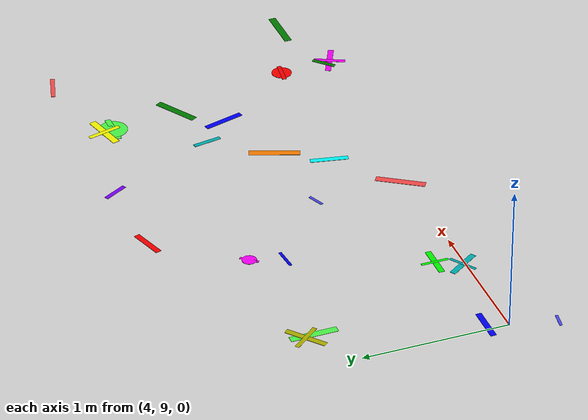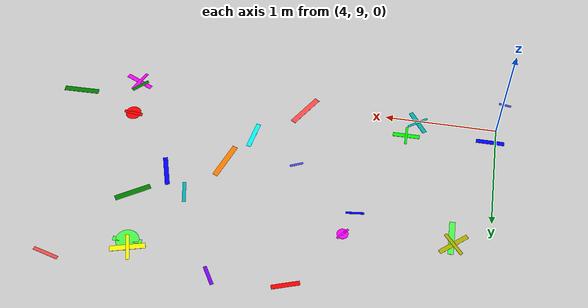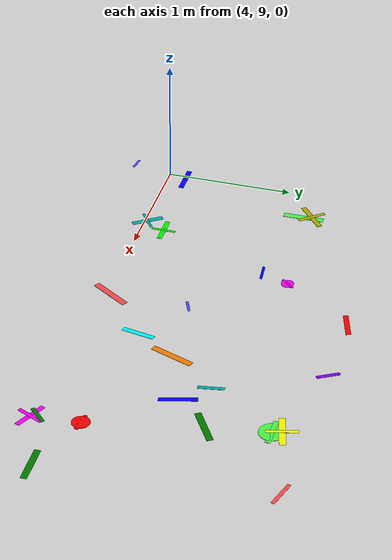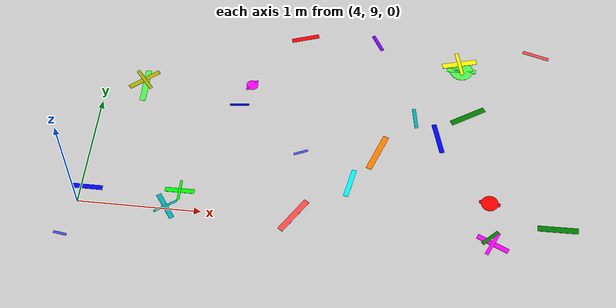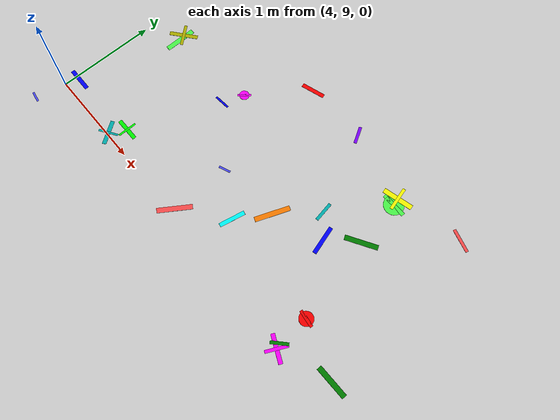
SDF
<sdf version="1.6">
 <world name="default">
  <model name="letter_X_1443">
   <static>true</static>
   <pose>3.93 8.69 0.004 0 0 2.988</pose>
   <link name="link">
    <visual name="visual">
     <geometry><box><size>0.11 0.02 0.002</size></box></geometry>
     <material>
      <ambient>0.3 0.3 1.0 1</ambient>
      <diffuse>0.3 0.3 1.0 1</diffuse>
      <specular>0.1 0.1 0.1 1</specular>
     </material>
    </visual>
   </link>
  </model>
  <model name="letter_U_1444">
   <static>true</static>
   <pose>4.05 9.14 0.004 0 0 3.137</pose>
   <link name="link">
    <visual name="visual">
     <geometry><box><size>0.25 0.04 0.002</size></box></geometry>
     <material>
      <ambient>0.0 0.0 1.0 1</ambient>
      <diffuse>0.0 0.0 1.0 1</diffuse>
      <specular>0.1 0.1 0.1 1</specular>
     </material>
    </visual>
   </link>
  </model>
  <model name="letter_L_1446">
   <static>true</static>
   <pose>4.31 10.26 0.013 0 0 3.841</pose>
   <link name="link">
    <visual name="visual">
     <geometry><box><size>0.29 0.04 0.002</size></box></geometry>
     <material>
      <ambient>0.7 0.7 0.0 1</ambient>
      <diffuse>0.7 0.7 0.0 1</diffuse>
      <specular>0.1 0.1 0.1 1</specular>
     </material>
    </visual>
    <visual name="visual2">
     <pose>0 0 0.001 0 0 1.57</pose>
     <geometry><box><size>0.23 0.03 0.001</size></box></geometry>
     <material><ambient>0.7 0.7 0.0 1</ambient><diffuse>0.7 0.7 0.0 1</diffuse></material>
    </visual>
   </link>
  </model>
  <model name="letter_Z_1447">
   <static>true</static>
   <pose>4.33 10.20 0.010 0 0 1.580</pose>
   <link name="link">
    <visual name="visual">
     <geometry><box><size>0.32 0.05 0.002</size></box></geometry>
     <material>
      <ambient>0.3 1.0 0.3 1</ambient>
      <diffuse>0.3 1.0 0.3 1</diffuse>
      <specular>0.1 0.1 0.1 1</specular>
     </material>
    </visual>
   </link>
  </model>
  <model name="letter_I_1518">
   <static>true</static>
   <pose>4.71 9.02 0.007 0 0 2.176</pose>
   <link name="link">
    <visual name="visual">
     <geometry><box><size>0.25 0.04 0.002</size></box></geometry>
     <material>
      <ambient>0.0 0.7 0.7 1</ambient>
      <diffuse>0.0 0.7 0.7 1</diffuse>
      <specular>0.1 0.1 0.1 1</specular>
     </material>
    </visual>
    <visual name="visual2">
     <pose>0 0 0.001 0 0 1.57</pose>
     <geometry><box><size>0.20 0.02 0.001</size></box></geometry>
     <material><ambient>0.0 0.7 0.7 1</ambient><diffuse>0.0 0.7 0.7 1</diffuse></material>
    </visual>
   </link>
  </model>
  <model name="letter_A_1519">
   <static>true</static>
   <pose>4.80 9.18 0.004 0 0 0.002</pose>
   <link name="link">
    <visual name="visual">
     <geometry><box><size>0.24 0.04 0.002</size></box></geometry>
     <material>
      <ambient>0.0 1.0 0.0 1</ambient>
      <diffuse>0.0 1.0 0.0 1</diffuse>
      <specular>0.1 0.1 0.1 1</specular>
     </material>
    </visual>
    <visual name="visual2">
     <pose>0 0 0.001 0 0 1.57</pose>
     <geometry><box><size>0.19 0.02 0.001</size></box></geometry>
     <material><ambient>0.0 1.0 0.0 1</ambient><diffuse>0.0 1.0 0.0 1</diffuse></material>
    </visual>
   </link>
  </model>
  <model name="letter_J_1520">
   <static>true</static>
   <pose>5.16 10.08 0.012 0 0 3.244</pose>
   <link name="link">
    <visual name="visual">
     <geometry><box><size>0.16 0.02 0.002</size></box></geometry>
     <material>
      <ambient>0.0 0.0 1.0 1</ambient>
      <diffuse>0.0 0.0 1.0 1</diffuse>
      <specular>0.1 0.1 0.1 1</specular>
     </material>
    </visual>
   </link>
  </model>
  <model name="letter_C_1521">
   <static>true</static>
   <pose>5.24 10.30 0.007 0 0 4.015</pose>
   <link name="link">
    <visual name="visual">
     <geometry><box><size>0.13 0.02 0.002</size></box></geometry>
     <material>
      <ambient>1.0 0.0 1.0 1</ambient>
      <diffuse>1.0 0.0 1.0 1</diffuse>
      <specular>0.1 0.1 0.1 1</specular>
     </material>
    </visual>
    <visual name="visual2">
     <geometry><cylinder><radius>0.05</radius><length>0.002</length></cylinder></geometry>
     <material><ambient>1.0 0.0 1.0 1</ambient><diffuse>1.0 0.0 1.0 1</diffuse></material>
    </visual>
   </link>
  </model>
  <model name="letter_S_1594">
   <static>true</static>
   <pose>5.74 9.04 0.005 0 0 0.998</pose>
   <link name="link">
    <visual name="visual">
     <geometry><box><size>0.34 0.05 0.002</size></box></geometry>
     <material>
      <ambient>1.0 0.3 0.3 1</ambient>
      <diffuse>1.0 0.3 0.3 1</diffuse>
      <specular>0.1 0.1 0.1 1</specular>
     </material>
    </visual>
   </link>
  </model>
  <model name="letter_P_1595">
   <static>true</static>
   <pose>6.16 9.39 0.005 0 0 1.378</pose>
   <link name="link">
    <visual name="visual">
     <geometry><box><size>0.26 0.04 0.002</size></box></geometry>
     <material>
      <ambient>0.0 1.0 1.0 1</ambient>
      <diffuse>0.0 1.0 1.0 1</diffuse>
      <specular>0.1 0.1 0.1 1</specular>
     </material>
    </visual>
   </link>
  </model>
  <model name="letter_D_1596">
   <static>true</static>
   <pose>5.73 9.65 0.004 0 0 3.549</pose>
   <link name="link">
    <visual name="visual">
     <geometry><box><size>0.12 0.02 0.002</size></box></geometry>
     <material>
      <ambient>0.3 0.3 1.0 1</ambient>
      <diffuse>0.3 0.3 1.0 1</diffuse>
      <specular>0.1 0.1 0.1 1</specular>
     </material>
    </visual>
   </link>
  </model>
  <model name="letter_D_1597">
   <static>true</static>
   <pose>6.36 9.71 0.006 0 0 4.356</pose>
   <link name="link">
    <visual name="visual">
     <geometry><box><size>0.35 0.05 0.002</size></box></geometry>
     <material>
      <ambient>1.0 0.5 0.0 1</ambient>
      <diffuse>1.0 0.5 0.0 1</diffuse>
      <specular>0.1 0.1 0.1 1</specular>
     </material>
    </visual>
   </link>
  </model>
  <model name="letter_P_1598">
   <static>true</static>
   <pose>5.64 10.86 0.012 0 0 0.319</pose>
   <link name="link">
    <visual name="visual">
     <geometry><box><size>0.24 0.04 0.002</size></box></geometry>
     <material>
      <ambient>1.0 0.0 0.0 1</ambient>
      <diffuse>1.0 0.0 0.0 1</diffuse>
      <specular>0.1 0.1 0.1 1</specular>
     </material>
    </visual>
   </link>
  </model>
  <model name="letter_X_1600">
   <static>true</static>
   <pose>6.28 10.87 0.012 0 0 5.237</pose>
   <link name="link">
    <visual name="visual">
     <geometry><box><size>0.18 0.03 0.002</size></box></geometry>
     <material>
      <ambient>0.5 0.0 1.0 1</ambient>
      <diffuse>0.5 0.0 1.0 1</diffuse>
      <specular>0.1 0.1 0.1 1</specular>
     </material>
    </visual>
   </link>
  </model>
  <model name="letter_J_1669">
   <static>true</static>
   <pose>7.30 8.99 0.012 0 0 3.909</pose>
   <link name="link">
    <visual name="visual">
     <geometry><box><size>0.17 0.03 0.002</size></box></geometry>
     <material>
      <ambient>0.0 0.5 0.0 1</ambient>
      <diffuse>0.0 0.5 0.0 1</diffuse>
      <specular>0.1 0.1 0.1 1</specular>
     </material>
    </visual>
   </link>
  </model>
  <model name="letter_F_1670">
   <static>true</static>
   <pose>7.32 8.94 0.010 0 0 2.700</pose>
   <link name="link">
    <visual name="visual">
     <geometry><box><size>0.27 0.04 0.002</size></box></geometry>
     <material>
      <ambient>1.0 0.0 1.0 1</ambient>
      <diffuse>1.0 0.0 1.0 1</diffuse>
      <specular>0.1 0.1 0.1 1</specular>
     </material>
    </visual>
    <visual name="visual2">
     <pose>0 0 0.001 0 0 1.57</pose>
     <geometry><box><size>0.22 0.03 0.001</size></box></geometry>
     <material><ambient>1.0 0.0 1.0 1</ambient><diffuse>1.0 0.0 1.0 1</diffuse></material>
    </visual>
   </link>
  </model>
  <model name="letter_Q_1671">
   <static>true</static>
   <pose>7.29 9.31 0.008 0 0 6.160</pose>
   <link name="link">
    <visual name="visual">
     <geometry><box><size>0.17 0.03 0.002</size></box></geometry>
     <material>
      <ambient>1.0 0.0 0.0 1</ambient>
      <diffuse>1.0 0.0 0.0 1</diffuse>
      <specular>0.1 0.1 0.1 1</specular>
     </material>
    </visual>
    <visual name="visual2">
     <geometry><cylinder><radius>0.07</radius><length>0.002</length></cylinder></geometry>
     <material><ambient>1.0 0.0 0.0 1</ambient><diffuse>1.0 0.0 0.0 1</diffuse></material>
    </visual>
   </link>
  </model>
  <model name="letter_V_1672">
   <static>true</static>
   <pose>6.85 9.90 0.010 0 0 1.849</pose>
   <link name="link">
    <visual name="visual">
     <geometry><box><size>0.29 0.04 0.002</size></box></geometry>
     <material>
      <ambient>0.0 0.0 1.0 1</ambient>
      <diffuse>0.0 0.0 1.0 1</diffuse>
      <specular>0.1 0.1 0.1 1</specular>
     </material>
    </visual>
   </link>
  </model>
  <model name="letter_M_1673">
   <static>true</static>
   <pose>7.09 10.16 0.003 0 0 3.697</pose>
   <link name="link">
    <visual name="visual">
     <geometry><box><size>0.32 0.05 0.002</size></box></geometry>
     <material>
      <ambient>0.0 0.5 0.0 1</ambient>
      <diffuse>0.0 0.5 0.0 1</diffuse>
      <specular>0.1 0.1 0.1 1</specular>
     </material>
    </visual>
   </link>
  </model>
  <model name="letter_X_1674">
   <static>true</static>
   <pose>6.65 10.09 0.006 0 0 1.743</pose>
   <link name="link">
    <visual name="visual">
     <geometry><box><size>0.20 0.03 0.002</size></box></geometry>
     <material>
      <ambient>0.0 0.7 0.7 1</ambient>
      <diffuse>0.0 0.7 0.7 1</diffuse>
      <specular>0.1 0.1 0.1 1</specular>
     </material>
    </visual>
   </link>
  </model>
  <model name="letter_H_1675">
   <static>true</static>
   <pose>7.00 10.71 0.012 0 0 0.258</pose>
   <link name="link">
    <visual name="visual">
     <geometry><box><size>0.30 0.05 0.002</size></box></geometry>
     <material>
      <ambient>1.0 1.0 0.0 1</ambient>
      <diffuse>1.0 1.0 0.0 1</diffuse>
      <specular>0.1 0.1 0.1 1</specular>
     </material>
    </visual>
    <visual name="visual2">
     <pose>0 0 0.001 0 0 1.57</pose>
     <geometry><box><size>0.24 0.03 0.001</size></box></geometry>
     <material><ambient>1.0 1.0 0.0 1</ambient><diffuse>1.0 1.0 0.0 1</diffuse></material>
    </visual>
   </link>
  </model>
  <model name="letter_C_1676">
   <static>true</static>
   <pose>7.02 10.64 0.007 0 0 0.002</pose>
   <link name="link">
    <visual name="visual">
     <geometry><box><size>0.25 0.04 0.002</size></box></geometry>
     <material>
      <ambient>0.3 1.0 0.3 1</ambient>
      <diffuse>0.3 1.0 0.3 1</diffuse>
      <specular>0.1 0.1 0.1 1</specular>
     </material>
    </visual>
    <visual name="visual2">
     <geometry><cylinder><radius>0.10</radius><length>0.002</length></cylinder></geometry>
     <material><ambient>0.3 1.0 0.3 1</ambient><diffuse>0.3 1.0 0.3 1</diffuse></material>
    </visual>
   </link>
  </model>
  <model name="letter_P_1751">
   <static>true</static>
   <pose>7.83 9.12 0.009 0 0 0.013</pose>
   <link name="link">
    <visual name="visual">
     <geometry><box><size>0.32 0.05 0.002</size></box></geometry>
     <material>
      <ambient>0.0 0.5 0.0 1</ambient>
      <diffuse>0.0 0.5 0.0 1</diffuse>
      <specular>0.1 0.1 0.1 1</specular>
     </material>
    </visual>
   </link>
  </model>
  <model name="letter_M_1758">
   <static>true</static>
   <pose>7.66 10.87 0.012 0 0 2.866</pose>
   <link name="link">
    <visual name="visual">
     <geometry><box><size>0.23 0.03 0.002</size></box></geometry>
     <material>
      <ambient>1.0 0.3 0.3 1</ambient>
      <diffuse>1.0 0.3 0.3 1</diffuse>
      <specular>0.1 0.1 0.1 1</specular>
     </material>
    </visual>
   </link>
  </model>
 </world>
</sdf>
